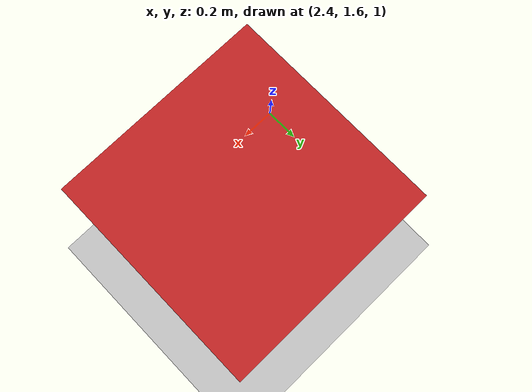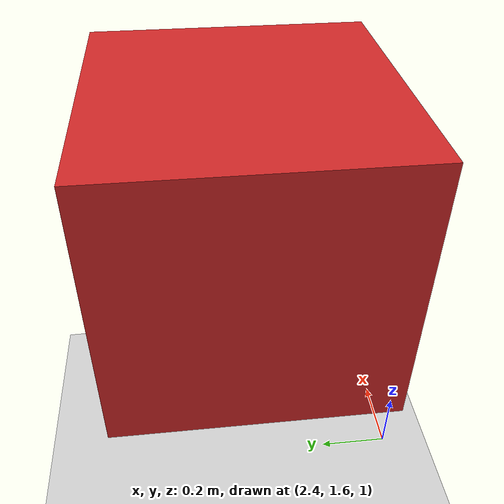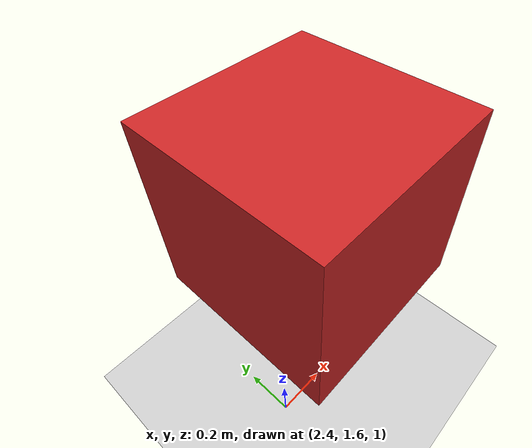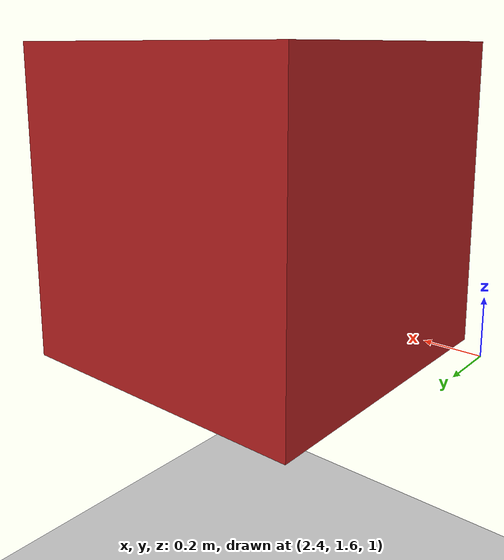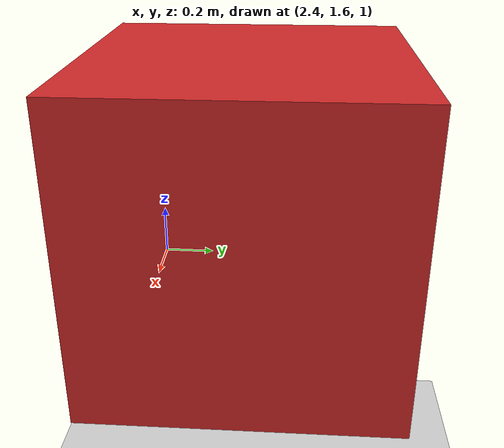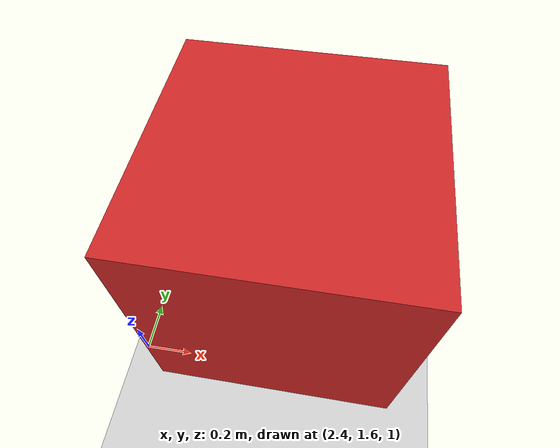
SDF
<sdf version="1.7">
 <world name="default">
  <plugin name="gazebo_ros_state" filename="libgazebo_ros_state.so">
   <ros><namespace>/gazebo</namespace></ros>
   <update_rate>1.0</update_rate>
  </plugin>
  <plugin name="gazebo_ros_init" filename="libgazebo_ros_init.so"><ros><namespace>/</namespace></ros></plugin>
  <plugin name="gazebo_ros_state" filename="libgazebo_ros_state.so">
   <ros><namespace>/gazebo</namespace></ros>
   <update_rate>50.0</update_rate>
  </plugin>
  <light name="sun" type="directional">
   <pose>0 0 10 0 -0 0</pose>
   <diffuse>0.8 0.8 0.8 1</diffuse>
   <specular>0.2 0.2 0.2 1</specular>
   <attenuation>
    <range>1000</range>
    <constant>0.9</constant>
    <linear>0.01</linear>
    <quadratic>0.001</quadratic>
   </attenuation>
   <direction>-0.5 0.1 -0.9</direction>
   <spot><inner_angle>0</inner_angle><outer_angle>0</outer_angle><falloff>0</falloff></spot>
  </light>
  <model name="ground_plane">
   <static>1</static>
   <link name="link">
    <collision name="collision">
     <geometry><plane><normal>0 0 1</normal><size>100 100</size></plane></geometry>
     <surface>
      <contact><collide_bitmask>65535</collide_bitmask></contact>
      <friction><ode><mu>100</mu><mu2>50</mu2></ode></friction>
     </surface>
    </collision>
    <visual name="visual">
     <cast_shadows>0</cast_shadows>
     <geometry><plane><normal>0 0 1</normal><size>100 100</size></plane></geometry>
     <material>
      <script><uri>file://media/materials/scripts/gazebo.material</uri><name>Gazebo/Grey</name></script>
     </material>
    </visual>
   </link>
  </model>
  <plugin name="gazebo_ros_force" filename="libgazebo_ros_force.so"><ros><namespace>/</namespace></ros></plugin>
  <model name="red_fruit">
   <pose>3.0 2.0 1.5 0 0 0</pose>
   <link name="link">
    <inertial>
     <mass>0.5</mass>
     <inertia><ixx>0.0001</ixx><ixy>0</ixy><ixz>0</ixz><iyy>0.0001</iyy><iyz>0</iyz><izz>0.0001</izz></inertia>
    </inertial>
    <collision name="collision">
     <geometry><box><size>1.0 1.0 1.0</size></box></geometry>
     <surface>
      <friction>
       <ode><mu>1.0</mu><mu2>1.0</mu2><fdir1>0 0 0</fdir1><slip1>0.0</slip1><slip2>0.0</slip2></ode>
      </friction>
      <contact><ode><kp>1000000.0</kp><kd>1.0</kd><min_depth>0.001</min_depth><max_vel>0.1</max_vel></ode></contact>
     </surface>
    </collision>
    <visual name="visual">
     <geometry><box><size>1.0 1.0 1.0</size></box></geometry>
     <material>
      <script><uri>file://media/materials/scripts/gazebo.material</uri><name>Gazebo/Red</name></script>
      <ambient>1 0 0 1</ambient>
      <diffuse>1 0 0 1</diffuse>
      <specular>0.1 0.1 0.1 1</specular>
      <emissive>0 0 0 1</emissive>
     </material>
    </visual>
    <plugin name="fruit_p3d" filename="libgazebo_ros_p3d.so">
     <ros><remapping>odom:=/fruit_world_position</remapping></ros>
     <body_name>link</body_name>
     <frame_name>world</frame_name>
     <update_rate>30</update_rate>
     <xyz_offset>0 0 0</xyz_offset>
     <rpy_offset>0 0 0</rpy_offset>
     <gaussian_noise>0.0</gaussian_noise>
    </plugin>
   </link>
  </model>
  <gravity>0 0 -9.8</gravity>
  <magnetic_field>6e-06 2.3e-05 -4.2e-05</magnetic_field>
  <atmosphere type="adiabatic"/>
  <physics type="ode">
   <max_step_size>0.001</max_step_size>
   <real_time_factor>1</real_time_factor>
   <real_time_update_rate>300</real_time_update_rate>
  </physics>
  <scene><ambient>0.4 0.4 0.4 1</ambient><background>0.7 0.7 0.7 1</background><shadows>1</shadows></scene>
  <spherical_coordinates>
   <surface_model>EARTH_WGS84</surface_model>
   <latitude_deg>0</latitude_deg>
   <longitude_deg>0</longitude_deg>
   <elevation>0</elevation>
   <heading_deg>0</heading_deg>
  </spherical_coordinates>
 </world>
</sdf>
